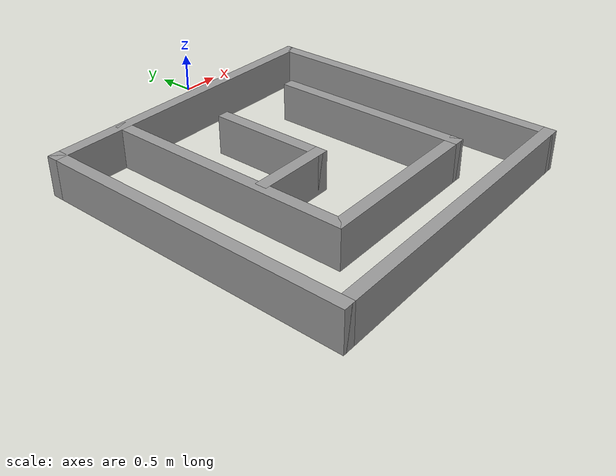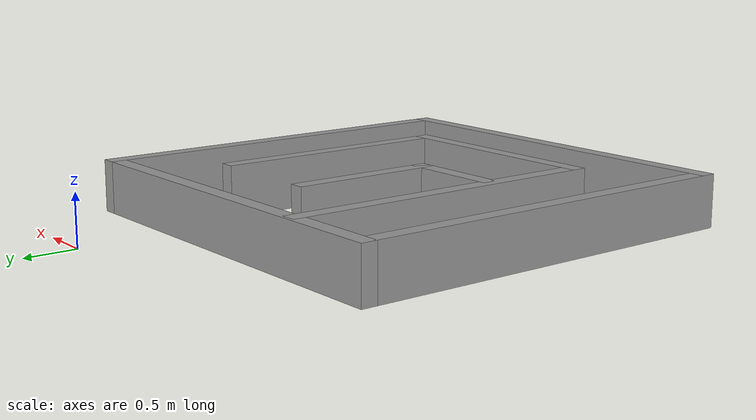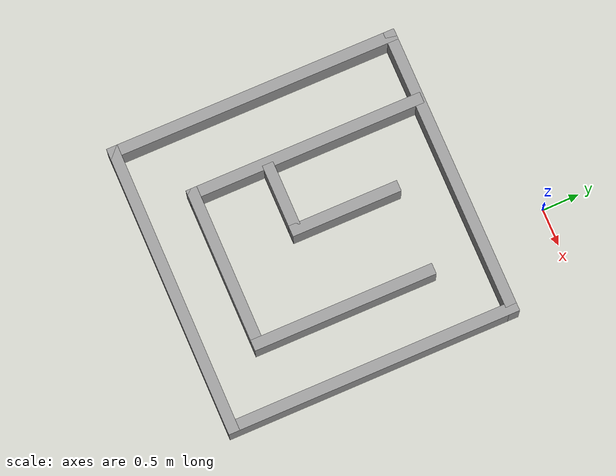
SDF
<?xml version='1.0'?>
<sdf version='1.6'>
  <model name='test_world'>
    <pose frame=''>-0.855 -2.855 0 0 -0 0</pose>
    <link name='Wall_0'>
      <collision name='Wall_0_Collision'>
        <geometry>
          <box>
            <size>4 0.15 0.5</size>
          </box>
        </geometry>
        <pose frame=''>0 0 0.25 0 -0 0</pose>
      </collision>
      <visual name='Wall_0_Visual'>
        <pose frame=''>0 0 0.25 0 -0 0</pose>
        <geometry>
          <box>
            <size>4 0.15 0.5</size>
          </box>
        </geometry>
        <material>
          <script>
            <uri>file://media/materials/scripts/gazebo.material</uri>
            <name>Gazebo/Grey</name>
          </script>
          <ambient>1 1 1 1</ambient>
        </material>
        <meta>
          <layer>0</layer>
        </meta>
      </visual>
      <pose frame=''>-1.925 0 0 0 0 -1.5708</pose>
    </link>
    <link name='Wall_1'>
      <collision name='Wall_1_Collision'>
        <geometry>
          <box>
            <size>4 0.15 0.5</size>
          </box>
        </geometry>
        <pose frame=''>0 0 0.25 0 -0 0</pose>
      </collision>
      <visual name='Wall_1_Visual'>
        <pose frame=''>0 0 0.25 0 -0 0</pose>
        <geometry>
          <box>
            <size>4 0.15 0.5</size>
          </box>
        </geometry>
        <material>
          <script>
            <uri>file://media/materials/scripts/gazebo.material</uri>
            <name>Gazebo/Grey</name>
          </script>
          <ambient>1 1 1 1</ambient>
        </material>
        <meta>
          <layer>0</layer>
        </meta>
      </visual>
      <pose frame=''>0 -1.925 0 0 -0 0</pose>
    </link>
    <link name='Wall_10'>
      <collision name='Wall_10_Collision'>
        <geometry>
          <box>
            <size>1.5 0.15 0.5</size>
          </box>
        </geometry>
        <pose frame=''>0 0 0.25 0 -0 0</pose>
      </collision>
      <visual name='Wall_10_Visual'>
        <pose frame=''>0 0 0.25 0 -0 0</pose>
        <geometry>
          <box>
            <size>1.5 0.15 0.5</size>
          </box>
        </geometry>
        <material>
          <script>
            <uri>file://media/materials/scripts/gazebo.material</uri>
            <name>Gazebo/Grey</name>
          </script>
          <ambient>1 1 1 1</ambient>
        </material>
        <meta>
          <layer>0</layer>
        </meta>
      </visual>
      <pose frame=''>-0.085 0.49 0 0 -0 1.5708</pose>
    </link>
    <link name='Wall_2'>
      <collision name='Wall_2_Collision'>
        <geometry>
          <box>
            <size>4 0.15 0.5</size>
          </box>
        </geometry>
        <pose frame=''>0 0 0.25 0 -0 0</pose>
      </collision>
      <visual name='Wall_2_Visual'>
        <pose frame=''>0 0 0.25 0 -0 0</pose>
        <geometry>
          <box>
            <size>4 0.15 0.5</size>
          </box>
        </geometry>
        <material>
          <script>
            <uri>file://media/materials/scripts/gazebo.material</uri>
            <name>Gazebo/Grey</name>
          </script>
          <ambient>1 1 1 1</ambient>
        </material>
        <meta>
          <layer>0</layer>
        </meta>
      </visual>
      <pose frame=''>1.925 0 0 0 -0 1.5708</pose>
    </link>
    <link name='Wall_3'>
      <collision name='Wall_3_Collision'>
        <geometry>
          <box>
            <size>4 0.15 0.5</size>
          </box>
        </geometry>
        <pose frame=''>0 0 0.25 0 -0 0</pose>
      </collision>
      <visual name='Wall_3_Visual'>
        <pose frame=''>0 0 0.25 0 -0 0</pose>
        <geometry>
          <box>
            <size>4 0.15 0.5</size>
          </box>
        </geometry>
        <material>
          <script>
            <uri>file://media/materials/scripts/gazebo.material</uri>
            <name>Gazebo/Grey</name>
          </script>
          <ambient>1 1 1 1</ambient>
        </material>
        <meta>
          <layer>0</layer>
        </meta>
      </visual>
      <pose frame=''>0 1.925 0 0 -0 3.14159</pose>
    </link>
    <link name='Wall_5'>
      <collision name='Wall_5_Collision'>
        <geometry>
          <box>
            <size>3.25 0.15 0.5</size>
          </box>
        </geometry>
        <pose frame=''>0 0 0.25 0 -0 0</pose>
      </collision>
      <visual name='Wall_5_Visual'>
        <pose frame=''>0 0 0.25 0 -0 0</pose>
        <geometry>
          <box>
            <size>3.25 0.15 0.5</size>
          </box>
        </geometry>
        <material>
          <script>
            <uri>file://media/materials/scripts/gazebo.material</uri>
            <name>Gazebo/Grey</name>
          </script>
          <ambient>1 1 1 1</ambient>
        </material>
        <meta>
          <layer>0</layer>
        </meta>
      </visual>
      <pose frame=''>-1.025 0.345 0 0 0 -1.5708</pose>
    </link>
    <link name='Wall_6'>
      <collision name='Wall_6_Collision'>
        <geometry>
          <box>
            <size>2.25 0.15 0.5</size>
          </box>
        </geometry>
        <pose frame=''>0 0 0.25 0 -0 0</pose>
      </collision>
      <visual name='Wall_6_Visual'>
        <pose frame=''>0 0 0.25 0 -0 0</pose>
        <geometry>
          <box>
            <size>2.25 0.15 0.5</size>
          </box>
        </geometry>
        <material>
          <script>
            <uri>file://media/materials/scripts/gazebo.material</uri>
            <name>Gazebo/Grey</name>
          </script>
          <ambient>1 1 1 1</ambient>
        </material>
        <meta>
          <layer>0</layer>
        </meta>
      </visual>
      <pose frame=''>0.025 -1.205 0 0 -0 0</pose>
    </link>
    <link name='Wall_7'>
      <collision name='Wall_7_Collision'>
        <geometry>
          <box>
            <size>2.5 0.15 0.5</size>
          </box>
        </geometry>
        <pose frame=''>0 0 0.25 0 -0 0</pose>
      </collision>
      <visual name='Wall_7_Visual'>
        <pose frame=''>0 0 0.25 0 -0 0</pose>
        <geometry>
          <box>
            <size>2.5 0.15 0.5</size>
          </box>
        </geometry>
        <material>
          <script>
            <uri>file://media/materials/scripts/gazebo.material</uri>
            <name>Gazebo/Grey</name>
          </script>
          <ambient>1 1 1 1</ambient>
        </material>
        <meta>
          <layer>0</layer>
        </meta>
      </visual>
      <pose frame=''>1.075 -0.03 0 0 -0 1.5708</pose>
    </link>
    <link name='Wall_9'>
      <collision name='Wall_9_Collision'>
        <geometry>
          <box>
            <size>1 0.15 0.5</size>
          </box>
        </geometry>
        <pose frame=''>0 0 0.25 0 -0 0</pose>
      </collision>
      <visual name='Wall_9_Visual'>
        <pose frame=''>0 0 0.25 0 -0 0</pose>
        <geometry>
          <box>
            <size>1 0.15 0.5</size>
          </box>
        </geometry>
        <material>
          <script>
            <uri>file://media/materials/scripts/gazebo.material</uri>
            <name>Gazebo/Grey</name>
          </script>
          <ambient>1 1 1 1</ambient>
        </material>
        <meta>
          <layer>0</layer>
        </meta>
      </visual>
      <pose frame=''>-0.51 -0.185 0 0 -0 0</pose>
    </link>
    <static>1</static>
  </model>
</sdf>
